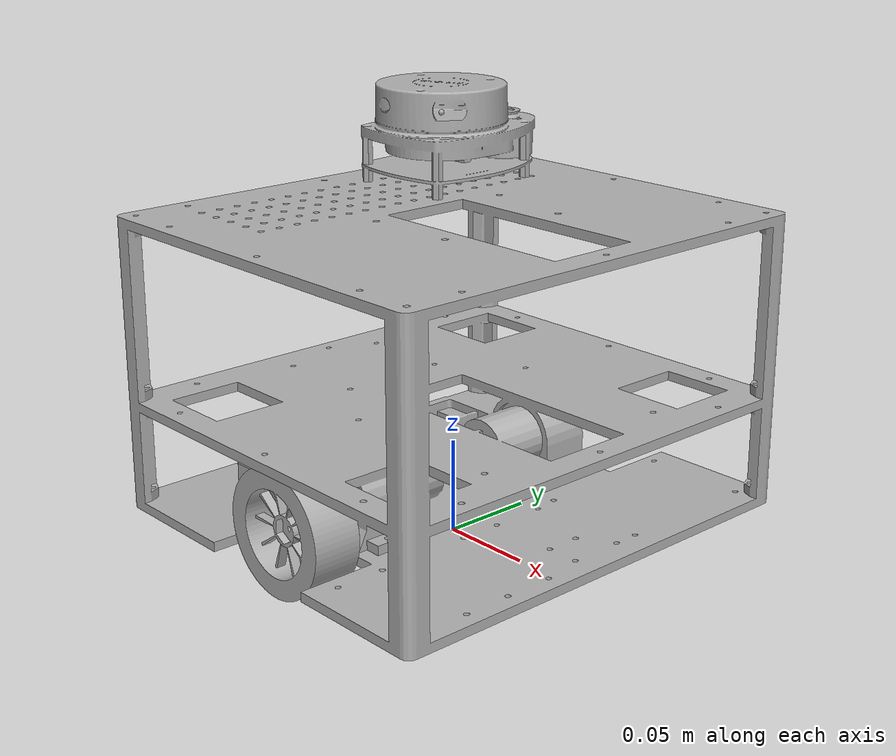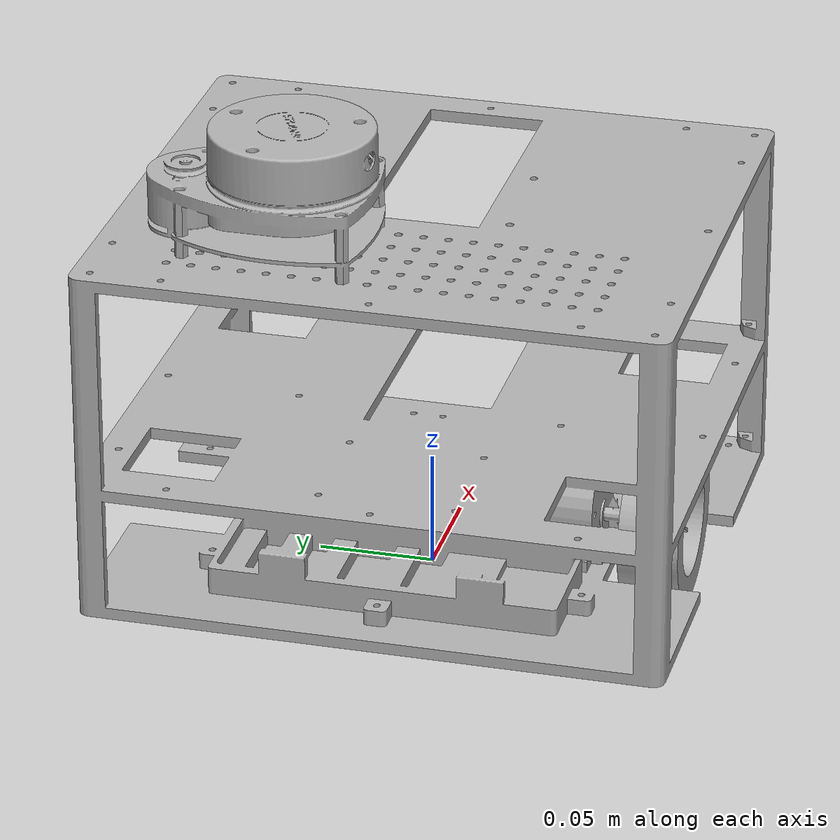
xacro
<?xml version="1.0" ?>
<robot name="edubot" xmlns:xacro="http://www.ros.org/wiki/xacro">

<xacro:include filename="$(find edubot_description)/urdf/materials.xacro" />
<xacro:include filename="$(find edubot_description)/urdf/edubot.trans.xacro" />
<xacro:include filename="$(find edubot_description)/urdf/edubot.gazebo.xacro" />
<link name="base_link">
  <inertial>
    <origin xyz="-0.005597409870864045 1.2680790124118197e-05 0.07582549638323267" rpy="0 0 0"/>
    <mass value="0.9913933449583395"/>
    <inertia ixx="0.008662" iyy="0.007488" izz="0.009111" ixy="-0.0" iyz="-0.0" ixz="-7.8e-05"/>
  </inertial>
  <visual>
    <origin xyz="0 0 0" rpy="0 0 0"/>
    <geometry>
      <mesh filename="package://edubot_description/meshes/base_link.stl" scale="0.001 0.001 0.001"/>
    </geometry>
    <material name="silver"/>
  </visual>
  <collision>
    <origin xyz="0 0 0" rpy="0 0 0"/>
    <geometry>
      <mesh filename="package://edubot_description/meshes/base_link.stl" scale="0.001 0.001 0.001"/>
    </geometry>
  </collision>
</link>

<link name="left_wheel">
  <inertial>
    <origin xyz="-3.671446903204126e-06 0.009837728922762912 1.9649811738159384e-06" rpy="0 0 0"/>
    <mass value="0.04849136422697651"/>
    <inertia ixx="2.1e-05" iyy="3.6e-05" izz="2.1e-05" ixy="-0.0" iyz="0.0" ixz="-0.0"/>
  </inertial>
  <visual>
    <origin xyz="0.000521 -0.091514 -0.032993" rpy="0 0 0"/>
    <geometry>
      <mesh filename="package://edubot_description/meshes/left_wheel.stl" scale="0.001 0.001 0.001"/>
    </geometry>
    <material name="silver"/>
  </visual>
  <collision>
    <origin xyz="0.000521 -0.091514 -0.032993" rpy="0 0 0"/>
    <geometry>
      <mesh filename="package://edubot_description/meshes/left_wheel.stl" scale="0.001 0.001 0.001"/>
    </geometry>
  </collision>
</link>

<link name="lidar">
  <inertial>
    <origin xyz="-0.020037183493869598 -0.028105106955607077 0.0238922170664298" rpy="0 0 0"/>
    <mass value="0.5105733408581701"/>
    <inertia ixx="0.000432" iyy="0.000212" izz="0.000506" ixy="0.0" iyz="3.9e-05" ixz="0.0"/>
  </inertial>
  <visual>
    <origin xyz="0.037521 -0.085896 -0.169993" rpy="0 0 0"/>
    <geometry>
      <mesh filename="package://edubot_description/meshes/lidar.stl" scale="0.001 0.001 0.001"/>
    </geometry>
    <material name="silver"/>
  </visual>
  <collision>
    <origin xyz="0.037521 -0.085896 -0.169993" rpy="0 0 0"/>
    <geometry>
      <mesh filename="package://edubot_description/meshes/lidar.stl" scale="0.001 0.001 0.001"/>
    </geometry>
  </collision>
</link>

<link name="base_laser">
  <inertial>
    <origin xyz="2.4505540371921875e-07 2.831249775042677e-07 -0.009000296212421988" rpy="0 0 0"/>
    <mass value="0.00011097676048805946"/>
    <inertia ixx="0.0" iyy="0.0" izz="0.0" ixy="0.0" iyz="-0.0" ixz="0.0"/>
  </inertial>
  <visual>
    <origin xyz="0.057521 -0.043896 -0.223493" rpy="0 0 0"/>
    <geometry>
      <mesh filename="package://edubot_description/meshes/dummy.stl" scale="0.001 0.001 0.001"/>
    </geometry>
    <material name="silver"/>
  </visual>
  <collision>
    <origin xyz="0.057521 -0.043896 -0.223493" rpy="0 0 0"/>
    <geometry>
      <mesh filename="package://edubot_description/meshes/dummy.stl" scale="0.001 0.001 0.001"/>
    </geometry>
  </collision>
</link>

<link name="right_wheel">
  <inertial>
    <origin xyz="4.840207803405547e-06 -0.009795033661765276 -2.9621241774691054e-07" rpy="0 0 0"/>
    <mass value="0.04772349189028793"/>
    <inertia ixx="2e-05" iyy="3.6e-05" izz="2e-05" ixy="-0.0" iyz="-0.0" ixz="-0.0"/>
  </inertial>
  <visual>
    <origin xyz="0.000521 0.091486 -0.032993" rpy="0 0 0"/>
    <geometry>
      <mesh filename="package://edubot_description/meshes/right_wheel.stl" scale="0.001 0.001 0.001"/>
    </geometry>
    <material name="silver"/>
  </visual>
  <collision>
    <origin xyz="0.000521 0.091486 -0.032993" rpy="0 0 0"/>
    <geometry>
      <mesh filename="package://edubot_description/meshes/right_wheel.stl" scale="0.001 0.001 0.001"/>
    </geometry>
  </collision>
</link>

<joint name="left_motor" type="continuous">
  <origin xyz="-0.000521 0.091514 0.032993" rpy="0 0 0"/>
  <parent link="base_link"/>
  <child link="left_wheel"/>
  <axis xyz="-0.0 1.0 0.0"/>
</joint>

<joint name="lidar_to_base" type="fixed">
  <origin xyz="-0.037521 0.085896 0.169993" rpy="0 0 0"/>
  <parent link="base_link"/>
  <child link="lidar"/>
</joint>

<joint name="lidar2laser" type="fixed">
  <origin xyz="-0.02 -0.042 0.0465" rpy="0 0 1.5707963267948966"/>
  <parent link="lidar"/>
  <child link="base_laser"/>
</joint>

<joint name="right_motor" type="continuous">
  <origin xyz="-0.000521 -0.091486 0.032993" rpy="0 0 0"/>
  <parent link="base_link"/>
  <child link="right_wheel"/>
  <axis xyz="0.0 1.0 -0.0"/>
</joint>

</robot>

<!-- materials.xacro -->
<robot name="edubot" xmlns:xacro="http://www.ros.org/wiki/xacro" >

<material name="silver">
  <color rgba="0.700 0.700 0.700 1.000"/>
</material>

</robot>
